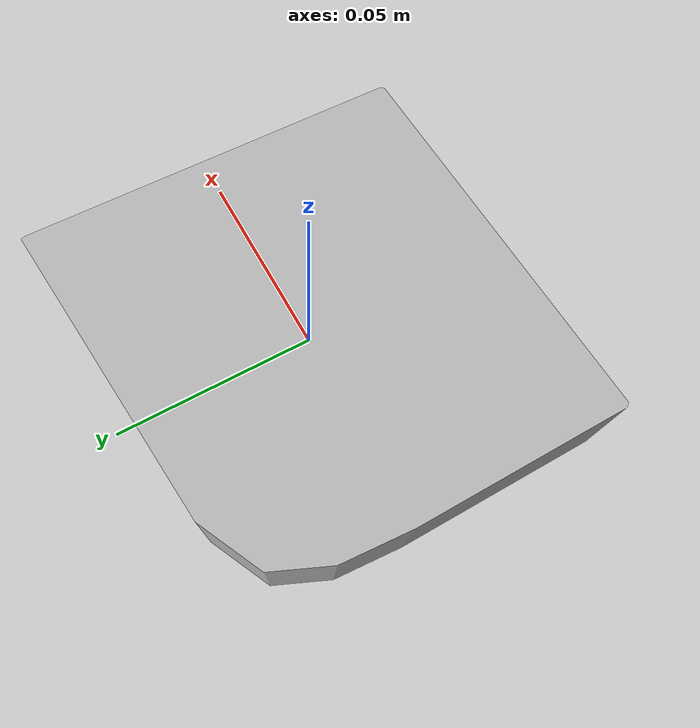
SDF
<?xml version="1.0"?>
<sdf version="1.7">
  <model name="push_r_glyph_controller">
    <link name="c_glyph_base">
      <inertial><pose>0.001756 -0.003321 0 0 0 0</pose><mass>0.130405833</mass>
        <inertia><ixx>1.055256597e-04</ixx><iyy>1.190952185e-04</iyy><izz>2.110369372e-04</izz><ixy>0</ixy><ixz>0</ixz><iyz>0</iyz></inertia></inertial>
      <visual name="hull_visual"><pose>0 0 0 0 0 0</pose>
        <geometry><mesh><uri>icra_glyphs/dynamic/R_prism.obj</uri></mesh></geometry>
      </visual>
      <collision name="hull_collision"><pose>0 0 0 0 0 0</pose>
        <geometry><mesh><uri>icra_glyphs/dynamic/R_prism.obj</uri><drake:declare_convex/></mesh></geometry>
        <surface><friction><ode><mu>0.3</mu><mu2>0.3</mu2></ode></friction></surface>
        <drake:proximity_properties><drake:mu_static>0.3</drake:mu_static><drake:mu_dynamic>0.3</drake:mu_dynamic></drake:proximity_properties>
      </collision>
      <collision name="witness_0"><pose>0.049750 0.049125 -0.0115 0 0 0</pose>
        <geometry><sphere><radius>0.001</radius></sphere></geometry></collision>
      <collision name="witness_1"><pose>-0.049516 0.003246 -0.0115 0 0 0</pose>
        <geometry><sphere><radius>0.001</radius></sphere></geometry></collision>
      <collision name="witness_2"><pose>0.049360 -0.049212 -0.0115 0 0 0</pose>
        <geometry><sphere><radius>0.001</radius></sphere></geometry></collision>
    </link>
  </model>
</sdf>
